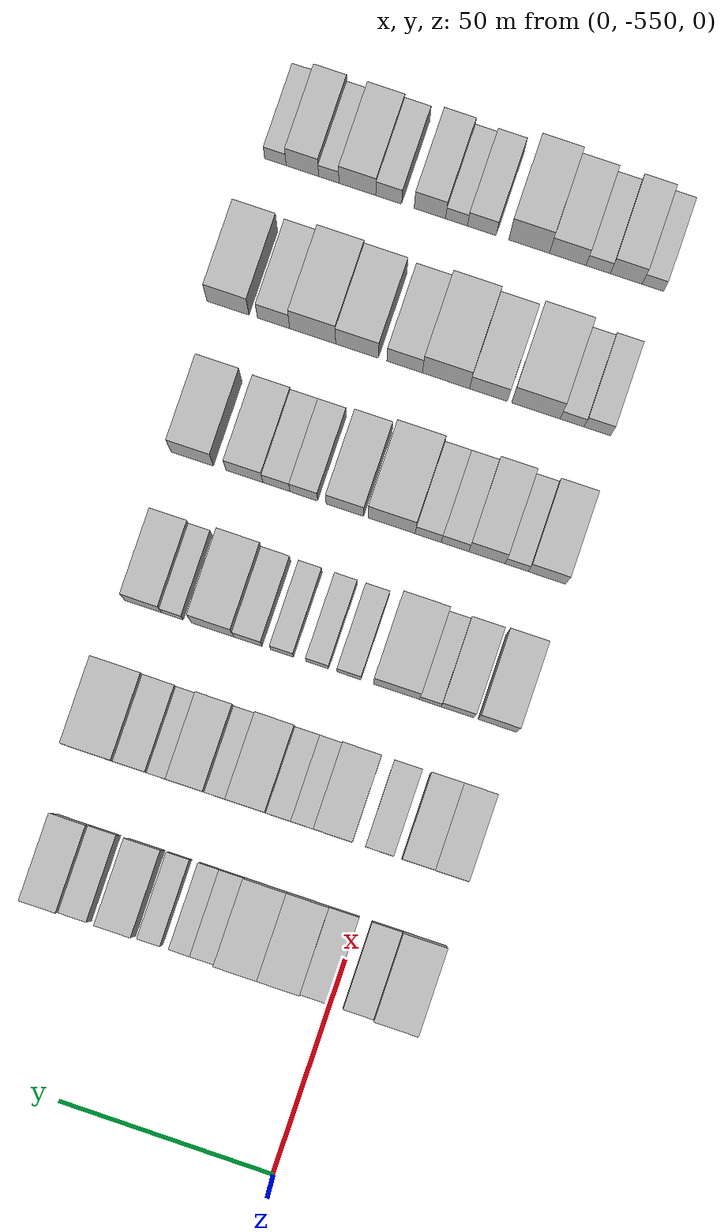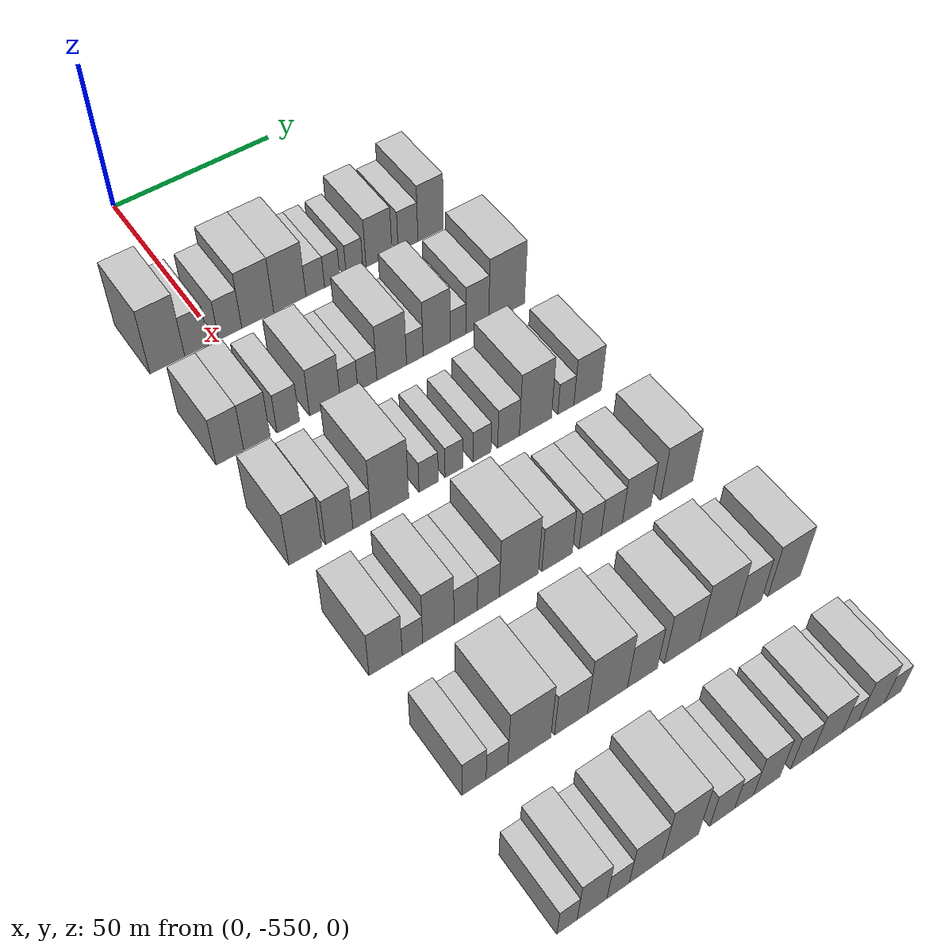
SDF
<sdf version="1.6">
 <world name="default">
  <model name="building_1">
   <static>1</static>
   <pose>50.0000 -564.9371 0 0.000000 0.000000 0.000000</pose>
   <link name="link">
    <pose>0 0 12.00 0 0 0</pose>
    <collision name="collision"><geometry><box><size>20.0000 10.1258 24.0000</size></box></geometry></collision>
    <visual name="visual">
     <cast_shadows>0</cast_shadows>
     <geometry><box><size>20.0000 10.1258 24.0000</size></box></geometry>
     <material>
      <script>
       <uri>model://HANNAS_wall/materials/scripts</uri>
       <uri>model://HANNAS_wall/materials/textures</uri>
       <name>vrc/HANNAS_wall</name>
      </script>
     </material>
    </visual>
   </link>
  </model>
  <model name="building_2">
   <static>1</static>
   <pose>50.0000 -556.3736 0 0.000000 0.000000 0.000000</pose>
   <link name="link">
    <pose>0 0 7.50 0 0 0</pose>
    <collision name="collision"><geometry><box><size>20.0000 7.0012 15.0000</size></box></geometry></collision>
    <visual name="visual">
     <cast_shadows>0</cast_shadows>
     <geometry><box><size>20.0000 7.0012 15.0000</size></box></geometry>
     <material>
      <script>
       <uri>model://HANNAS_wall/materials/scripts</uri>
       <uri>model://HANNAS_wall/materials/textures</uri>
       <name>vrc/HANNAS_wall</name>
      </script>
     </material>
    </visual>
   </link>
  </model>
  <model name="building_3">
   <static>1</static>
   <pose>50.0000 -546.3919 0 0.000000 0.000000 0.000000</pose>
   <link name="link">
    <pose>0 0 7.50 0 0 0</pose>
    <collision name="collision"><geometry><box><size>20.0000 6.9620 15.0000</size></box></geometry></collision>
    <visual name="visual">
     <cast_shadows>0</cast_shadows>
     <geometry><box><size>20.0000 6.9620 15.0000</size></box></geometry>
     <material>
      <script>
       <uri>model://HANNAS_wall/materials/scripts</uri>
       <uri>model://HANNAS_wall/materials/textures</uri>
       <name>vrc/HANNAS_wall</name>
      </script>
     </material>
    </visual>
   </link>
  </model>
  <model name="building_4">
   <static>1</static>
   <pose>50.0000 -538.0496 0 0.000000 0.000000 0.000000</pose>
   <link name="link">
    <pose>0 0 10.50 0 0 0</pose>
    <collision name="collision"><geometry><box><size>20.0000 9.7227 21.0000</size></box></geometry></collision>
    <visual name="visual">
     <cast_shadows>0</cast_shadows>
     <geometry><box><size>20.0000 9.7227 21.0000</size></box></geometry>
     <material>
      <script>
       <uri>model://HANNAS_wall/materials/scripts</uri>
       <uri>model://HANNAS_wall/materials/textures</uri>
       <name>vrc/HANNAS_wall</name>
      </script>
     </material>
    </visual>
   </link>
  </model>
  <model name="building_5">
   <static>1</static>
   <pose>50.0000 -528.2253 0 0.000000 0.000000 0.000000</pose>
   <link name="link">
    <pose>0 0 10.50 0 0 0</pose>
    <collision name="collision"><geometry><box><size>20.0000 9.9258 21.0000</size></box></geometry></collision>
    <visual name="visual">
     <cast_shadows>0</cast_shadows>
     <geometry><box><size>20.0000 9.9258 21.0000</size></box></geometry>
     <material>
      <script>
       <uri>model://HANNAS_wall/materials/scripts</uri>
       <uri>model://HANNAS_wall/materials/textures</uri>
       <name>vrc/HANNAS_wall</name>
      </script>
     </material>
    </visual>
   </link>
  </model>
  <model name="building_6">
   <static>1</static>
   <pose>50.0000 -520.3430 0 0.000000 0.000000 0.000000</pose>
   <link name="link">
    <pose>0 0 6.00 0 0 0</pose>
    <collision name="collision"><geometry><box><size>20.0000 5.8388 12.0000</size></box></geometry></collision>
    <visual name="visual">
     <cast_shadows>0</cast_shadows>
     <geometry><box><size>20.0000 5.8388 12.0000</size></box></geometry>
     <material>
      <script>
       <uri>model://HANNAS_wall/materials/scripts</uri>
       <uri>model://HANNAS_wall/materials/textures</uri>
       <name>vrc/HANNAS_wall</name>
      </script>
     </material>
    </visual>
   </link>
  </model>
  <model name="building_7">
   <static>1</static>
   <pose>50.0000 -514.9900 0 0.000000 0.000000 0.000000</pose>
   <link name="link">
    <pose>0 0 6.00 0 0 0</pose>
    <collision name="collision"><geometry><box><size>20.0000 4.8670 12.0000</size></box></geometry></collision>
    <visual name="visual">
     <cast_shadows>0</cast_shadows>
     <geometry><box><size>20.0000 4.8670 12.0000</size></box></geometry>
     <material>
      <script>
       <uri>model://HANNAS_wall/materials/scripts</uri>
       <uri>model://HANNAS_wall/materials/textures</uri>
       <name>vrc/HANNAS_wall</name>
      </script>
     </material>
    </visual>
   </link>
  </model>
  <model name="building_8">
   <static>1</static>
   <pose>50.0000 -507.8897 0 0.000000 0.000000 0.000000</pose>
   <link name="link">
    <pose>0 0 6.00 0 0 0</pose>
    <collision name="collision"><geometry><box><size>20.0000 5.3337 12.0000</size></box></geometry></collision>
    <visual name="visual">
     <cast_shadows>0</cast_shadows>
     <geometry><box><size>20.0000 5.3337 12.0000</size></box></geometry>
     <material>
      <script>
       <uri>model://HANNAS_wall/materials/scripts</uri>
       <uri>model://HANNAS_wall/materials/textures</uri>
       <name>vrc/HANNAS_wall</name>
      </script>
     </material>
    </visual>
   </link>
  </model>
  <model name="building_9">
   <static>1</static>
   <pose>50.0000 -500.0174 0 0.000000 0.000000 0.000000</pose>
   <link name="link">
    <pose>0 0 9.00 0 0 0</pose>
    <collision name="collision"><geometry><box><size>20.0000 8.4110 18.0000</size></box></geometry></collision>
    <visual name="visual">
     <cast_shadows>0</cast_shadows>
     <geometry><box><size>20.0000 8.4110 18.0000</size></box></geometry>
     <material>
      <script>
       <uri>model://HANNAS_wall/materials/scripts</uri>
       <uri>model://HANNAS_wall/materials/textures</uri>
       <name>vrc/HANNAS_wall</name>
      </script>
     </material>
    </visual>
   </link>
  </model>
  <model name="building_10">
   <static>1</static>
   <pose>50.0000 -490.5648 0 0.000000 0.000000 0.000000</pose>
   <link name="link">
    <pose>0 0 7.50 0 0 0</pose>
    <collision name="collision"><geometry><box><size>20.0000 6.4942 15.0000</size></box></geometry></collision>
    <visual name="visual">
     <cast_shadows>0</cast_shadows>
     <geometry><box><size>20.0000 6.4942 15.0000</size></box></geometry>
     <material>
      <script>
       <uri>model://HANNAS_wall/materials/scripts</uri>
       <uri>model://HANNAS_wall/materials/textures</uri>
       <name>vrc/HANNAS_wall</name>
      </script>
     </material>
    </visual>
   </link>
  </model>
  <model name="building_11">
   <static>1</static>
   <pose>50.0000 -483.0995 0 0.000000 0.000000 0.000000</pose>
   <link name="link">
    <pose>0 0 10.50 0 0 0</pose>
    <collision name="collision"><geometry><box><size>20.0000 8.4364 21.0000</size></box></geometry></collision>
    <visual name="visual">
     <cast_shadows>0</cast_shadows>
     <geometry><box><size>20.0000 8.4364 21.0000</size></box></geometry>
     <material>
      <script>
       <uri>model://HANNAS_wall/materials/scripts</uri>
       <uri>model://HANNAS_wall/materials/textures</uri>
       <name>vrc/HANNAS_wall</name>
      </script>
     </material>
    </visual>
   </link>
  </model>
  <model name="building_128">
   <static>1</static>
   <pose>85.0000 -566.1047 0 0.000000 0.000000 0.000000</pose>
   <link name="link">
    <pose>0 0 9.00 0 0 0</pose>
    <collision name="collision"><geometry><box><size>20.0000 7.7905 18.0000</size></box></geometry></collision>
    <visual name="visual">
     <cast_shadows>0</cast_shadows>
     <geometry><box><size>20.0000 7.7905 18.0000</size></box></geometry>
     <material>
      <script>
       <uri>model://HANNAS_wall/materials/scripts</uri>
       <uri>model://HANNAS_wall/materials/textures</uri>
       <name>vrc/HANNAS_wall</name>
      </script>
     </material>
    </visual>
   </link>
  </model>
  <model name="building_129">
   <static>1</static>
   <pose>85.0000 -558.4535 0 0.000000 0.000000 0.000000</pose>
   <link name="link">
    <pose>0 0 9.00 0 0 0</pose>
    <collision name="collision"><geometry><box><size>20.0000 7.5120 18.0000</size></box></geometry></collision>
    <visual name="visual">
     <cast_shadows>0</cast_shadows>
     <geometry><box><size>20.0000 7.5120 18.0000</size></box></geometry>
     <material>
      <script>
       <uri>model://HANNAS_wall/materials/scripts</uri>
       <uri>model://HANNAS_wall/materials/textures</uri>
       <name>vrc/HANNAS_wall</name>
      </script>
     </material>
    </visual>
   </link>
  </model>
  <model name="building_130">
   <static>1</static>
   <pose>85.0000 -549.4455 0 0.000000 0.000000 0.000000</pose>
   <link name="link">
    <pose>0 0 7.50 0 0 0</pose>
    <collision name="collision"><geometry><box><size>20.0000 6.5040 15.0000</size></box></geometry></collision>
    <visual name="visual">
     <cast_shadows>0</cast_shadows>
     <geometry><box><size>20.0000 6.5040 15.0000</size></box></geometry>
     <material>
      <script>
       <uri>model://HANNAS_wall/materials/scripts</uri>
       <uri>model://HANNAS_wall/materials/textures</uri>
       <name>vrc/HANNAS_wall</name>
      </script>
     </material>
    </visual>
   </link>
  </model>
  <model name="building_131">
   <static>1</static>
   <pose>85.0000 -538.6971 0 0.000000 0.000000 0.000000</pose>
   <link name="link">
    <pose>0 0 9.00 0 0 0</pose>
    <collision name="collision"><geometry><box><size>20.0000 8.9928 18.0000</size></box></geometry></collision>
    <visual name="visual">
     <cast_shadows>0</cast_shadows>
     <geometry><box><size>20.0000 8.9928 18.0000</size></box></geometry>
     <material>
      <script>
       <uri>model://HANNAS_wall/materials/scripts</uri>
       <uri>model://HANNAS_wall/materials/textures</uri>
       <name>vrc/HANNAS_wall</name>
      </script>
     </material>
    </visual>
   </link>
  </model>
  <model name="building_132">
   <static>1</static>
   <pose>85.0000 -531.5405 0 0.000000 0.000000 0.000000</pose>
   <link name="link">
    <pose>0 0 6.00 0 0 0</pose>
    <collision name="collision"><geometry><box><size>20.0000 5.3203 12.0000</size></box></geometry></collision>
    <visual name="visual">
     <cast_shadows>0</cast_shadows>
     <geometry><box><size>20.0000 5.3203 12.0000</size></box></geometry>
     <material>
      <script>
       <uri>model://HANNAS_wall/materials/scripts</uri>
       <uri>model://HANNAS_wall/materials/textures</uri>
       <name>vrc/HANNAS_wall</name>
      </script>
     </material>
    </visual>
   </link>
  </model>
  <model name="building_133">
   <static>1</static>
   <pose>85.0000 -526.0004 0 0.000000 0.000000 0.000000</pose>
   <link name="link">
    <pose>0 0 6.00 0 0 0</pose>
    <collision name="collision"><geometry><box><size>20.0000 5.7601 12.0000</size></box></geometry></collision>
    <visual name="visual">
     <cast_shadows>0</cast_shadows>
     <geometry><box><size>20.0000 5.7601 12.0000</size></box></geometry>
     <material>
      <script>
       <uri>model://HANNAS_wall/materials/scripts</uri>
       <uri>model://HANNAS_wall/materials/textures</uri>
       <name>vrc/HANNAS_wall</name>
      </script>
     </material>
    </visual>
   </link>
  </model>
  <model name="building_134">
   <static>1</static>
   <pose>85.0000 -518.5793 0 0.000000 0.000000 0.000000</pose>
   <link name="link">
    <pose>0 0 10.50 0 0 0</pose>
    <collision name="collision"><geometry><box><size>20.0000 9.0820 21.0000</size></box></geometry></collision>
    <visual name="visual">
     <cast_shadows>0</cast_shadows>
     <geometry><box><size>20.0000 9.0820 21.0000</size></box></geometry>
     <material>
      <script>
       <uri>model://HANNAS_wall/materials/scripts</uri>
       <uri>model://HANNAS_wall/materials/textures</uri>
       <name>vrc/HANNAS_wall</name>
      </script>
     </material>
    </visual>
   </link>
  </model>
  <model name="building_135">
   <static>1</static>
   <pose>85.0000 -511.4647 0 0.000000 0.000000 0.000000</pose>
   <link name="link">
    <pose>0 0 6.00 0 0 0</pose>
    <collision name="collision"><geometry><box><size>20.0000 5.1472 12.0000</size></box></geometry></collision>
    <visual name="visual">
     <cast_shadows>0</cast_shadows>
     <geometry><box><size>20.0000 5.1472 12.0000</size></box></geometry>
     <material>
      <script>
       <uri>model://HANNAS_wall/materials/scripts</uri>
       <uri>model://HANNAS_wall/materials/textures</uri>
       <name>vrc/HANNAS_wall</name>
      </script>
     </material>
    </visual>
   </link>
  </model>
  <model name="building_136">
   <static>1</static>
   <pose>85.0000 -504.6475 0 0.000000 0.000000 0.000000</pose>
   <link name="link">
    <pose>0 0 10.50 0 0 0</pose>
    <collision name="collision"><geometry><box><size>20.0000 8.4872 21.0000</size></box></geometry></collision>
    <visual name="visual">
     <cast_shadows>0</cast_shadows>
     <geometry><box><size>20.0000 8.4872 21.0000</size></box></geometry>
     <material>
      <script>
       <uri>model://HANNAS_wall/materials/scripts</uri>
       <uri>model://HANNAS_wall/materials/textures</uri>
       <name>vrc/HANNAS_wall</name>
      </script>
     </material>
    </visual>
   </link>
  </model>
  <model name="building_137">
   <static>1</static>
   <pose>85.0000 -497.9480 0 0.000000 0.000000 0.000000</pose>
   <link name="link">
    <pose>0 0 6.00 0 0 0</pose>
    <collision name="collision"><geometry><box><size>20.0000 4.9119 12.0000</size></box></geometry></collision>
    <visual name="visual">
     <cast_shadows>0</cast_shadows>
     <geometry><box><size>20.0000 4.9119 12.0000</size></box></geometry>
     <material>
      <script>
       <uri>model://HANNAS_wall/materials/scripts</uri>
       <uri>model://HANNAS_wall/materials/textures</uri>
       <name>vrc/HANNAS_wall</name>
      </script>
     </material>
    </visual>
   </link>
  </model>
  <model name="building_138">
   <static>1</static>
   <pose>85.0000 -491.8033 0 0.000000 0.000000 0.000000</pose>
   <link name="link">
    <pose>0 0 9.00 0 0 0</pose>
    <collision name="collision"><geometry><box><size>20.0000 7.3774 18.0000</size></box></geometry></collision>
    <visual name="visual">
     <cast_shadows>0</cast_shadows>
     <geometry><box><size>20.0000 7.3774 18.0000</size></box></geometry>
     <material>
      <script>
       <uri>model://HANNAS_wall/materials/scripts</uri>
       <uri>model://HANNAS_wall/materials/textures</uri>
       <name>vrc/HANNAS_wall</name>
      </script>
     </material>
    </visual>
   </link>
  </model>
  <model name="building_139">
   <static>1</static>
   <pose>85.0000 -482.2939 0 0.000000 0.000000 0.000000</pose>
   <link name="link">
    <pose>0 0 12.00 0 0 0</pose>
    <collision name="collision"><geometry><box><size>20.0000 11.6415 24.0000</size></box></geometry></collision>
    <visual name="visual">
     <cast_shadows>0</cast_shadows>
     <geometry><box><size>20.0000 11.6415 24.0000</size></box></geometry>
     <material>
      <script>
       <uri>model://HANNAS_wall/materials/scripts</uri>
       <uri>model://HANNAS_wall/materials/textures</uri>
       <name>vrc/HANNAS_wall</name>
      </script>
     </material>
    </visual>
   </link>
  </model>
  <model name="building_253">
   <static>1</static>
   <pose>120.0000 -565.4733 0 0.000000 0.000000 0.000000</pose>
   <link name="link">
    <pose>0 0 10.50 0 0 0</pose>
    <collision name="collision"><geometry><box><size>20.0000 9.0533 21.0000</size></box></geometry></collision>
    <visual name="visual">
     <cast_shadows>0</cast_shadows>
     <geometry><box><size>20.0000 9.0533 21.0000</size></box></geometry>
     <material>
      <script>
       <uri>model://HANNAS_wall/materials/scripts</uri>
       <uri>model://HANNAS_wall/materials/textures</uri>
       <name>vrc/HANNAS_wall</name>
      </script>
     </material>
    </visual>
   </link>
  </model>
  <model name="building_254">
   <static>1</static>
   <pose>120.0000 -556.1009 0 0.000000 0.000000 0.000000</pose>
   <link name="link">
    <pose>0 0 9.00 0 0 0</pose>
    <collision name="collision"><geometry><box><size>20.0000 7.6916 18.0000</size></box></geometry></collision>
    <visual name="visual">
     <cast_shadows>0</cast_shadows>
     <geometry><box><size>20.0000 7.6916 18.0000</size></box></geometry>
     <material>
      <script>
       <uri>model://HANNAS_wall/materials/scripts</uri>
       <uri>model://HANNAS_wall/materials/textures</uri>
       <name>vrc/HANNAS_wall</name>
      </script>
     </material>
    </visual>
   </link>
  </model>
  <model name="building_255">
   <static>1</static>
   <pose>120.0000 -549.7220 0 0.000000 0.000000 0.000000</pose>
   <link name="link">
    <pose>0 0 6.00 0 0 0</pose>
    <collision name="collision"><geometry><box><size>20.0000 5.0662 12.0000</size></box></geometry></collision>
    <visual name="visual">
     <cast_shadows>0</cast_shadows>
     <geometry><box><size>20.0000 5.0662 12.0000</size></box></geometry>
     <material>
      <script>
       <uri>model://HANNAS_wall/materials/scripts</uri>
       <uri>model://HANNAS_wall/materials/textures</uri>
       <name>vrc/HANNAS_wall</name>
      </script>
     </material>
    </visual>
   </link>
  </model>
  <model name="building_256">
   <static>1</static>
   <pose>120.0000 -541.7917 0 0.000000 0.000000 0.000000</pose>
   <link name="link">
    <pose>0 0 12.00 0 0 0</pose>
    <collision name="collision"><geometry><box><size>20.0000 10.7942 24.0000</size></box></geometry></collision>
    <visual name="visual">
     <cast_shadows>0</cast_shadows>
     <geometry><box><size>20.0000 10.7942 24.0000</size></box></geometry>
     <material>
      <script>
       <uri>model://HANNAS_wall/materials/scripts</uri>
       <uri>model://HANNAS_wall/materials/textures</uri>
       <name>vrc/HANNAS_wall</name>
      </script>
     </material>
    </visual>
   </link>
  </model>
  <model name="building_257">
   <static>1</static>
   <pose>120.0000 -530.5836 0 0.000000 0.000000 0.000000</pose>
   <link name="link">
    <pose>0 0 6.00 0 0 0</pose>
    <collision name="collision"><geometry><box><size>20.0000 5.6221 12.0000</size></box></geometry></collision>
    <visual name="visual">
     <cast_shadows>0</cast_shadows>
     <geometry><box><size>20.0000 5.6221 12.0000</size></box></geometry>
     <material>
      <script>
       <uri>model://HANNAS_wall/materials/scripts</uri>
       <uri>model://HANNAS_wall/materials/textures</uri>
       <name>vrc/HANNAS_wall</name>
      </script>
     </material>
    </visual>
   </link>
  </model>
  <model name="building_258">
   <static>1</static>
   <pose>120.0000 -523.1265 0 0.000000 0.000000 0.000000</pose>
   <link name="link">
    <pose>0 0 6.00 0 0 0</pose>
    <collision name="collision"><geometry><box><size>20.0000 5.2922 12.0000</size></box></geometry></collision>
    <visual name="visual">
     <cast_shadows>0</cast_shadows>
     <geometry><box><size>20.0000 5.2922 12.0000</size></box></geometry>
     <material>
      <script>
       <uri>model://HANNAS_wall/materials/scripts</uri>
       <uri>model://HANNAS_wall/materials/textures</uri>
       <name>vrc/HANNAS_wall</name>
      </script>
     </material>
    </visual>
   </link>
  </model>
  <model name="building_259">
   <static>1</static>
   <pose>120.0000 -514.7713 0 0.000000 0.000000 0.000000</pose>
   <link name="link">
    <pose>0 0 6.00 0 0 0</pose>
    <collision name="collision"><geometry><box><size>20.0000 5.4182 12.0000</size></box></geometry></collision>
    <visual name="visual">
     <cast_shadows>0</cast_shadows>
     <geometry><box><size>20.0000 5.4182 12.0000</size></box></geometry>
     <material>
      <script>
       <uri>model://HANNAS_wall/materials/scripts</uri>
       <uri>model://HANNAS_wall/materials/textures</uri>
       <name>vrc/HANNAS_wall</name>
      </script>
     </material>
    </visual>
   </link>
  </model>
  <model name="building_260">
   <static>1</static>
   <pose>120.0000 -506.7471 0 0.000000 0.000000 0.000000</pose>
   <link name="link">
    <pose>0 0 7.50 0 0 0</pose>
    <collision name="collision"><geometry><box><size>20.0000 6.6301 15.0000</size></box></geometry></collision>
    <visual name="visual">
     <cast_shadows>0</cast_shadows>
     <geometry><box><size>20.0000 6.6301 15.0000</size></box></geometry>
     <material>
      <script>
       <uri>model://HANNAS_wall/materials/scripts</uri>
       <uri>model://HANNAS_wall/materials/textures</uri>
       <name>vrc/HANNAS_wall</name>
      </script>
     </material>
    </visual>
   </link>
  </model>
  <model name="building_261">
   <static>1</static>
   <pose>120.0000 -498.4509 0 0.000000 0.000000 0.000000</pose>
   <link name="link">
    <pose>0 0 12.00 0 0 0</pose>
    <collision name="collision"><geometry><box><size>20.0000 9.9622 24.0000</size></box></geometry></collision>
    <visual name="visual">
     <cast_shadows>0</cast_shadows>
     <geometry><box><size>20.0000 9.9622 24.0000</size></box></geometry>
     <material>
      <script>
       <uri>model://HANNAS_wall/materials/scripts</uri>
       <uri>model://HANNAS_wall/materials/textures</uri>
       <name>vrc/HANNAS_wall</name>
      </script>
     </material>
    </visual>
   </link>
  </model>
  <model name="building_262">
   <static>1</static>
   <pose>120.0000 -488.9418 0 0.000000 0.000000 0.000000</pose>
   <link name="link">
    <pose>0 0 6.00 0 0 0</pose>
    <collision name="collision"><geometry><box><size>20.0000 5.0562 12.0000</size></box></geometry></collision>
    <visual name="visual">
     <cast_shadows>0</cast_shadows>
     <geometry><box><size>20.0000 5.0562 12.0000</size></box></geometry>
     <material>
      <script>
       <uri>model://HANNAS_wall/materials/scripts</uri>
       <uri>model://HANNAS_wall/materials/textures</uri>
       <name>vrc/HANNAS_wall</name>
      </script>
     </material>
    </visual>
   </link>
  </model>
  <model name="building_263">
   <static>1</static>
   <pose>120.0000 -482.0504 0 0.000000 0.000000 0.000000</pose>
   <link name="link">
    <pose>0 0 9.00 0 0 0</pose>
    <collision name="collision"><geometry><box><size>20.0000 8.7266 18.0000</size></box></geometry></collision>
    <visual name="visual">
     <cast_shadows>0</cast_shadows>
     <geometry><box><size>20.0000 8.7266 18.0000</size></box></geometry>
     <material>
      <script>
       <uri>model://HANNAS_wall/materials/scripts</uri>
       <uri>model://HANNAS_wall/materials/textures</uri>
       <name>vrc/HANNAS_wall</name>
      </script>
     </material>
    </visual>
   </link>
  </model>
  <model name="building_380">
   <static>1</static>
   <pose>155.0000 -565.5691 0 0.000000 0.000000 0.000000</pose>
   <link name="link">
    <pose>0 0 9.00 0 0 0</pose>
    <collision name="collision"><geometry><box><size>20.0000 8.8619 18.0000</size></box></geometry></collision>
    <visual name="visual">
     <cast_shadows>0</cast_shadows>
     <geometry><box><size>20.0000 8.8619 18.0000</size></box></geometry>
     <material>
      <script>
       <uri>model://HANNAS_wall/materials/scripts</uri>
       <uri>model://HANNAS_wall/materials/textures</uri>
       <name>vrc/HANNAS_wall</name>
      </script>
     </material>
    </visual>
   </link>
  </model>
  <model name="building_381">
   <static>1</static>
   <pose>155.0000 -558.3789 0 0.000000 0.000000 0.000000</pose>
   <link name="link">
    <pose>0 0 6.00 0 0 0</pose>
    <collision name="collision"><geometry><box><size>20.0000 5.5184 12.0000</size></box></geometry></collision>
    <visual name="visual">
     <cast_shadows>0</cast_shadows>
     <geometry><box><size>20.0000 5.5184 12.0000</size></box></geometry>
     <material>
      <script>
       <uri>model://HANNAS_wall/materials/scripts</uri>
       <uri>model://HANNAS_wall/materials/textures</uri>
       <name>vrc/HANNAS_wall</name>
      </script>
     </material>
    </visual>
   </link>
  </model>
  <model name="building_382">
   <static>1</static>
   <pose>155.0000 -551.3504 0 0.000000 0.000000 0.000000</pose>
   <link name="link">
    <pose>0 0 10.50 0 0 0</pose>
    <collision name="collision"><geometry><box><size>20.0000 8.5385 21.0000</size></box></geometry></collision>
    <visual name="visual">
     <cast_shadows>0</cast_shadows>
     <geometry><box><size>20.0000 8.5385 21.0000</size></box></geometry>
     <material>
      <script>
       <uri>model://HANNAS_wall/materials/scripts</uri>
       <uri>model://HANNAS_wall/materials/textures</uri>
       <name>vrc/HANNAS_wall</name>
      </script>
     </material>
    </visual>
   </link>
  </model>
  <model name="building_383">
   <static>1</static>
   <pose>155.0000 -543.8409 0 0.000000 0.000000 0.000000</pose>
   <link name="link">
    <pose>0 0 7.50 0 0 0</pose>
    <collision name="collision"><geometry><box><size>20.0000 6.4807 15.0000</size></box></geometry></collision>
    <visual name="visual">
     <cast_shadows>0</cast_shadows>
     <geometry><box><size>20.0000 6.4807 15.0000</size></box></geometry>
     <material>
      <script>
       <uri>model://HANNAS_wall/materials/scripts</uri>
       <uri>model://HANNAS_wall/materials/textures</uri>
       <name>vrc/HANNAS_wall</name>
      </script>
     </material>
    </visual>
   </link>
  </model>
  <model name="building_384">
   <static>1</static>
   <pose>155.0000 -537.5071 0 0.000000 0.000000 0.000000</pose>
   <link name="link">
    <pose>0 0 7.50 0 0 0</pose>
    <collision name="collision"><geometry><box><size>20.0000 6.1869 15.0000</size></box></geometry></collision>
    <visual name="visual">
     <cast_shadows>0</cast_shadows>
     <geometry><box><size>20.0000 6.1869 15.0000</size></box></geometry>
     <material>
      <script>
       <uri>model://HANNAS_wall/materials/scripts</uri>
       <uri>model://HANNAS_wall/materials/textures</uri>
       <name>vrc/HANNAS_wall</name>
      </script>
     </material>
    </visual>
   </link>
  </model>
  <model name="building_385">
   <static>1</static>
   <pose>155.0000 -528.8248 0 0.000000 0.000000 0.000000</pose>
   <link name="link">
    <pose>0 0 12.00 0 0 0</pose>
    <collision name="collision"><geometry><box><size>20.0000 11.1777 24.0000</size></box></geometry></collision>
    <visual name="visual">
     <cast_shadows>0</cast_shadows>
     <geometry><box><size>20.0000 11.1777 24.0000</size></box></geometry>
     <material>
      <script>
       <uri>model://HANNAS_wall/materials/scripts</uri>
       <uri>model://HANNAS_wall/materials/textures</uri>
       <name>vrc/HANNAS_wall</name>
      </script>
     </material>
    </visual>
   </link>
  </model>
  <model name="building_386">
   <static>1</static>
   <pose>155.0000 -517.7871 0 0.000000 0.000000 0.000000</pose>
   <link name="link">
    <pose>0 0 9.00 0 0 0</pose>
    <collision name="collision"><geometry><box><size>20.0000 8.8977 18.0000</size></box></geometry></collision>
    <visual name="visual">
     <cast_shadows>0</cast_shadows>
     <geometry><box><size>20.0000 8.8977 18.0000</size></box></geometry>
     <material>
      <script>
       <uri>model://HANNAS_wall/materials/scripts</uri>
       <uri>model://HANNAS_wall/materials/textures</uri>
       <name>vrc/HANNAS_wall</name>
      </script>
     </material>
    </visual>
   </link>
  </model>
  <model name="building_387">
   <static>1</static>
   <pose>155.0000 -508.0558 0 0.000000 0.000000 0.000000</pose>
   <link name="link">
    <pose>0 0 7.50 0 0 0</pose>
    <collision name="collision"><geometry><box><size>20.0000 6.5650 15.0000</size></box></geometry></collision>
    <visual name="visual">
     <cast_shadows>0</cast_shadows>
     <geometry><box><size>20.0000 6.5650 15.0000</size></box></geometry>
     <material>
      <script>
       <uri>model://HANNAS_wall/materials/scripts</uri>
       <uri>model://HANNAS_wall/materials/textures</uri>
       <name>vrc/HANNAS_wall</name>
      </script>
     </material>
    </visual>
   </link>
  </model>
  <model name="building_388">
   <static>1</static>
   <pose>155.0000 -501.5712 0 0.000000 0.000000 0.000000</pose>
   <link name="link">
    <pose>0 0 7.50 0 0 0</pose>
    <collision name="collision"><geometry><box><size>20.0000 6.4041 15.0000</size></box></geometry></collision>
    <visual name="visual">
     <cast_shadows>0</cast_shadows>
     <geometry><box><size>20.0000 6.4041 15.0000</size></box></geometry>
     <material>
      <script>
       <uri>model://HANNAS_wall/materials/scripts</uri>
       <uri>model://HANNAS_wall/materials/textures</uri>
       <name>vrc/HANNAS_wall</name>
      </script>
     </material>
    </visual>
   </link>
  </model>
  <model name="building_389">
   <static>1</static>
   <pose>155.0000 -493.9991 0 0.000000 0.000000 0.000000</pose>
   <link name="link">
    <pose>0 0 9.00 0 0 0</pose>
    <collision name="collision"><geometry><box><size>20.0000 8.7402 18.0000</size></box></geometry></collision>
    <visual name="visual">
     <cast_shadows>0</cast_shadows>
     <geometry><box><size>20.0000 8.7402 18.0000</size></box></geometry>
     <material>
      <script>
       <uri>model://HANNAS_wall/materials/scripts</uri>
       <uri>model://HANNAS_wall/materials/textures</uri>
       <name>vrc/HANNAS_wall</name>
      </script>
     </material>
    </visual>
   </link>
  </model>
  <model name="building_390">
   <static>1</static>
   <pose>155.0000 -481.6002 0 0.000000 0.000000 0.000000</pose>
   <link name="link">
    <pose>0 0 10.50 0 0 0</pose>
    <collision name="collision"><geometry><box><size>20.0000 10.0576 21.0000</size></box></geometry></collision>
    <visual name="visual">
     <cast_shadows>0</cast_shadows>
     <geometry><box><size>20.0000 10.0576 21.0000</size></box></geometry>
     <material>
      <script>
       <uri>model://HANNAS_wall/materials/scripts</uri>
       <uri>model://HANNAS_wall/materials/textures</uri>
       <name>vrc/HANNAS_wall</name>
      </script>
     </material>
    </visual>
   </link>
  </model>
  <model name="building_507">
   <static>1</static>
   <pose>190.0000 -565.8577 0 0.000000 0.000000 0.000000</pose>
   <link name="link">
    <pose>0 0 7.50 0 0 0</pose>
    <collision name="collision"><geometry><box><size>20.0000 6.2846 15.0000</size></box></geometry></collision>
    <visual name="visual">
     <cast_shadows>0</cast_shadows>
     <geometry><box><size>20.0000 6.2846 15.0000</size></box></geometry>
     <material>
      <script>
       <uri>model://HANNAS_wall/materials/scripts</uri>
       <uri>model://HANNAS_wall/materials/textures</uri>
       <name>vrc/HANNAS_wall</name>
      </script>
     </material>
    </visual>
   </link>
  </model>
  <model name="building_508">
   <static>1</static>
   <pose>190.0000 -559.8732 0 0.000000 0.000000 0.000000</pose>
   <link name="link">
    <pose>0 0 6.00 0 0 0</pose>
    <collision name="collision"><geometry><box><size>20.0000 5.6844 12.0000</size></box></geometry></collision>
    <visual name="visual">
     <cast_shadows>0</cast_shadows>
     <geometry><box><size>20.0000 5.6844 12.0000</size></box></geometry>
     <material>
      <script>
       <uri>model://HANNAS_wall/materials/scripts</uri>
       <uri>model://HANNAS_wall/materials/textures</uri>
       <name>vrc/HANNAS_wall</name>
      </script>
     </material>
    </visual>
   </link>
  </model>
  <model name="building_509">
   <static>1</static>
   <pose>190.0000 -551.2915 0 0.000000 0.000000 0.000000</pose>
   <link name="link">
    <pose>0 0 12.00 0 0 0</pose>
    <collision name="collision"><geometry><box><size>20.0000 11.4791 24.0000</size></box></geometry></collision>
    <visual name="visual">
     <cast_shadows>0</cast_shadows>
     <geometry><box><size>20.0000 11.4791 24.0000</size></box></geometry>
     <material>
      <script>
       <uri>model://HANNAS_wall/materials/scripts</uri>
       <uri>model://HANNAS_wall/materials/textures</uri>
       <name>vrc/HANNAS_wall</name>
      </script>
     </material>
    </visual>
   </link>
  </model>
  <model name="building_510">
   <static>1</static>
   <pose>190.0000 -540.0602 0 0.000000 0.000000 0.000000</pose>
   <link name="link">
    <pose>0 0 9.00 0 0 0</pose>
    <collision name="collision"><geometry><box><size>20.0000 8.9835 18.0000</size></box></geometry></collision>
    <visual name="visual">
     <cast_shadows>0</cast_shadows>
     <geometry><box><size>20.0000 8.9835 18.0000</size></box></geometry>
     <material>
      <script>
       <uri>model://HANNAS_wall/materials/scripts</uri>
       <uri>model://HANNAS_wall/materials/textures</uri>
       <name>vrc/HANNAS_wall</name>
      </script>
     </material>
    </visual>
   </link>
  </model>
  <model name="building_511">
   <static>1</static>
   <pose>190.0000 -529.9746 0 0.000000 0.000000 0.000000</pose>
   <link name="link">
    <pose>0 0 12.00 0 0 0</pose>
    <collision name="collision"><geometry><box><size>20.0000 11.1876 24.0000</size></box></geometry></collision>
    <visual name="visual">
     <cast_shadows>0</cast_shadows>
     <geometry><box><size>20.0000 11.1876 24.0000</size></box></geometry>
     <material>
      <script>
       <uri>model://HANNAS_wall/materials/scripts</uri>
       <uri>model://HANNAS_wall/materials/textures</uri>
       <name>vrc/HANNAS_wall</name>
      </script>
     </material>
    </visual>
   </link>
  </model>
  <model name="building_512">
   <static>1</static>
   <pose>190.0000 -520.1507 0 0.000000 0.000000 0.000000</pose>
   <link name="link">
    <pose>0 0 9.00 0 0 0</pose>
    <collision name="collision"><geometry><box><size>20.0000 8.4604 18.0000</size></box></geometry></collision>
    <visual name="visual">
     <cast_shadows>0</cast_shadows>
     <geometry><box><size>20.0000 8.4604 18.0000</size></box></geometry>
     <material>
      <script>
       <uri>model://HANNAS_wall/materials/scripts</uri>
       <uri>model://HANNAS_wall/materials/textures</uri>
       <name>vrc/HANNAS_wall</name>
      </script>
     </material>
    </visual>
   </link>
  </model>
  <model name="building_513">
   <static>1</static>
   <pose>190.0000 -508.8477 0 0.000000 0.000000 0.000000</pose>
   <link name="link">
    <pose>0 0 10.50 0 0 0</pose>
    <collision name="collision"><geometry><box><size>20.0000 10.1456 21.0000</size></box></geometry></collision>
    <visual name="visual">
     <cast_shadows>0</cast_shadows>
     <geometry><box><size>20.0000 10.1456 21.0000</size></box></geometry>
     <material>
      <script>
       <uri>model://HANNAS_wall/materials/scripts</uri>
       <uri>model://HANNAS_wall/materials/textures</uri>
       <name>vrc/HANNAS_wall</name>
      </script>
     </material>
    </visual>
   </link>
  </model>
  <model name="building_514">
   <static>1</static>
   <pose>190.0000 -498.3076 0 0.000000 0.000000 0.000000</pose>
   <link name="link">
    <pose>0 0 12.00 0 0 0</pose>
    <collision name="collision"><geometry><box><size>20.0000 10.9345 24.0000</size></box></geometry></collision>
    <visual name="visual">
     <cast_shadows>0</cast_shadows>
     <geometry><box><size>20.0000 10.9345 24.0000</size></box></geometry>
     <material>
      <script>
       <uri>model://HANNAS_wall/materials/scripts</uri>
       <uri>model://HANNAS_wall/materials/textures</uri>
       <name>vrc/HANNAS_wall</name>
      </script>
     </material>
    </visual>
   </link>
  </model>
  <model name="building_515">
   <static>1</static>
   <pose>190.0000 -489.0140 0 0.000000 0.000000 0.000000</pose>
   <link name="link">
    <pose>0 0 9.00 0 0 0</pose>
    <collision name="collision"><geometry><box><size>20.0000 7.6527 18.0000</size></box></geometry></collision>
    <visual name="visual">
     <cast_shadows>0</cast_shadows>
     <geometry><box><size>20.0000 7.6527 18.0000</size></box></geometry>
     <material>
      <script>
       <uri>model://HANNAS_wall/materials/scripts</uri>
       <uri>model://HANNAS_wall/materials/textures</uri>
       <name>vrc/HANNAS_wall</name>
      </script>
     </material>
    </visual>
   </link>
  </model>
  <model name="building_516">
   <static>1</static>
   <pose>190.0000 -478.1787 0 0.000000 0.000000 0.000000</pose>
   <link name="link">
    <pose>0 0 10.50 0 0 0</pose>
    <collision name="collision"><geometry><box><size>20.0000 10.0179 21.0000</size></box></geometry></collision>
    <visual name="visual">
     <cast_shadows>0</cast_shadows>
     <geometry><box><size>20.0000 10.0179 21.0000</size></box></geometry>
     <material>
      <script>
       <uri>model://HANNAS_wall/materials/scripts</uri>
       <uri>model://HANNAS_wall/materials/textures</uri>
       <name>vrc/HANNAS_wall</name>
      </script>
     </material>
    </visual>
   </link>
  </model>
  <model name="building_629">
   <static>1</static>
   <pose>225.0000 -567.4613 0 0.000000 0.000000 0.000000</pose>
   <link name="link">
    <pose>0 0 6.00 0 0 0</pose>
    <collision name="collision"><geometry><box><size>20.0000 5.0773 12.0000</size></box></geometry></collision>
    <visual name="visual">
     <cast_shadows>0</cast_shadows>
     <geometry><box><size>20.0000 5.0773 12.0000</size></box></geometry>
     <material>
      <script>
       <uri>model://HANNAS_wall/materials/scripts</uri>
       <uri>model://HANNAS_wall/materials/textures</uri>
       <name>vrc/HANNAS_wall</name>
      </script>
     </material>
    </visual>
   </link>
  </model>
  <model name="building_630">
   <static>1</static>
   <pose>225.0000 -561.1272 0 0.000000 0.000000 0.000000</pose>
   <link name="link">
    <pose>0 0 9.00 0 0 0</pose>
    <collision name="collision"><geometry><box><size>20.0000 7.5910 18.0000</size></box></geometry></collision>
    <visual name="visual">
     <cast_shadows>0</cast_shadows>
     <geometry><box><size>20.0000 7.5910 18.0000</size></box></geometry>
     <material>
      <script>
       <uri>model://HANNAS_wall/materials/scripts</uri>
       <uri>model://HANNAS_wall/materials/textures</uri>
       <name>vrc/HANNAS_wall</name>
      </script>
     </material>
    </visual>
   </link>
  </model>
  <model name="building_631">
   <static>1</static>
   <pose>225.0000 -554.4503 0 0.000000 0.000000 0.000000</pose>
   <link name="link">
    <pose>0 0 6.00 0 0 0</pose>
    <collision name="collision"><geometry><box><size>20.0000 5.7629 12.0000</size></box></geometry></collision>
    <visual name="visual">
     <cast_shadows>0</cast_shadows>
     <geometry><box><size>20.0000 5.7629 12.0000</size></box></geometry>
     <material>
      <script>
       <uri>model://HANNAS_wall/materials/scripts</uri>
       <uri>model://HANNAS_wall/materials/textures</uri>
       <name>vrc/HANNAS_wall</name>
      </script>
     </material>
    </visual>
   </link>
  </model>
  <model name="building_632">
   <static>1</static>
   <pose>225.0000 -547.2232 0 0.000000 0.000000 0.000000</pose>
   <link name="link">
    <pose>0 0 9.00 0 0 0</pose>
    <collision name="collision"><geometry><box><size>20.0000 8.6911 18.0000</size></box></geometry></collision>
    <visual name="visual">
     <cast_shadows>0</cast_shadows>
     <geometry><box><size>20.0000 8.6911 18.0000</size></box></geometry>
     <material>
      <script>
       <uri>model://HANNAS_wall/materials/scripts</uri>
       <uri>model://HANNAS_wall/materials/textures</uri>
       <name>vrc/HANNAS_wall</name>
      </script>
     </material>
    </visual>
   </link>
  </model>
  <model name="building_633">
   <static>1</static>
   <pose>225.0000 -538.0397 0 0.000000 0.000000 0.000000</pose>
   <link name="link">
    <pose>0 0 12.00 0 0 0</pose>
    <collision name="collision"><geometry><box><size>20.0000 9.6759 24.0000</size></box></geometry></collision>
    <visual name="visual">
     <cast_shadows>0</cast_shadows>
     <geometry><box><size>20.0000 9.6759 24.0000</size></box></geometry>
     <material>
      <script>
       <uri>model://HANNAS_wall/materials/scripts</uri>
       <uri>model://HANNAS_wall/materials/textures</uri>
       <name>vrc/HANNAS_wall</name>
      </script>
     </material>
    </visual>
   </link>
  </model>
  <model name="building_634">
   <static>1</static>
   <pose>225.0000 -526.7805 0 0.000000 0.000000 0.000000</pose>
   <link name="link">
    <pose>0 0 7.50 0 0 0</pose>
    <collision name="collision"><geometry><box><size>20.0000 6.8426 15.0000</size></box></geometry></collision>
    <visual name="visual">
     <cast_shadows>0</cast_shadows>
     <geometry><box><size>20.0000 6.8426 15.0000</size></box></geometry>
     <material>
      <script>
       <uri>model://HANNAS_wall/materials/scripts</uri>
       <uri>model://HANNAS_wall/materials/textures</uri>
       <name>vrc/HANNAS_wall</name>
      </script>
     </material>
    </visual>
   </link>
  </model>
  <model name="building_635">
   <static>1</static>
   <pose>225.0000 -520.7539 0 0.000000 0.000000 0.000000</pose>
   <link name="link">
    <pose>0 0 6.00 0 0 0</pose>
    <collision name="collision"><geometry><box><size>20.0000 5.2107 12.0000</size></box></geometry></collision>
    <visual name="visual">
     <cast_shadows>0</cast_shadows>
     <geometry><box><size>20.0000 5.2107 12.0000</size></box></geometry>
     <material>
      <script>
       <uri>model://HANNAS_wall/materials/scripts</uri>
       <uri>model://HANNAS_wall/materials/textures</uri>
       <name>vrc/HANNAS_wall</name>
      </script>
     </material>
    </visual>
   </link>
  </model>
  <model name="building_636">
   <static>1</static>
   <pose>225.0000 -514.4122 0 0.000000 0.000000 0.000000</pose>
   <link name="link">
    <pose>0 0 9.00 0 0 0</pose>
    <collision name="collision"><geometry><box><size>20.0000 7.4726 18.0000</size></box></geometry></collision>
    <visual name="visual">
     <cast_shadows>0</cast_shadows>
     <geometry><box><size>20.0000 7.4726 18.0000</size></box></geometry>
     <material>
      <script>
       <uri>model://HANNAS_wall/materials/scripts</uri>
       <uri>model://HANNAS_wall/materials/textures</uri>
       <name>vrc/HANNAS_wall</name>
      </script>
     </material>
    </visual>
   </link>
  </model>
  <model name="building_637">
   <static>1</static>
   <pose>225.0000 -504.5912 0 0.000000 0.000000 0.000000</pose>
   <link name="link">
    <pose>0 0 7.50 0 0 0</pose>
    <collision name="collision"><geometry><box><size>20.0000 6.1695 15.0000</size></box></geometry></collision>
    <visual name="visual">
     <cast_shadows>0</cast_shadows>
     <geometry><box><size>20.0000 6.1695 15.0000</size></box></geometry>
     <material>
      <script>
       <uri>model://HANNAS_wall/materials/scripts</uri>
       <uri>model://HANNAS_wall/materials/textures</uri>
       <name>vrc/HANNAS_wall</name>
      </script>
     </material>
    </visual>
   </link>
  </model>
  <model name="building_638">
   <static>1</static>
   <pose>225.0000 -497.1098 0 0.000000 0.000000 0.000000</pose>
   <link name="link">
    <pose>0 0 9.00 0 0 0</pose>
    <collision name="collision"><geometry><box><size>20.0000 8.7934 18.0000</size></box></geometry></collision>
    <visual name="visual">
     <cast_shadows>0</cast_shadows>
     <geometry><box><size>20.0000 8.7934 18.0000</size></box></geometry>
     <material>
      <script>
       <uri>model://HANNAS_wall/materials/scripts</uri>
       <uri>model://HANNAS_wall/materials/textures</uri>
       <name>vrc/HANNAS_wall</name>
      </script>
     </material>
    </visual>
   </link>
  </model>
  <model name="building_639">
   <static>1</static>
   <pose>225.0000 -490.2869 0 0.000000 0.000000 0.000000</pose>
   <link name="link">
    <pose>0 0 6.00 0 0 0</pose>
    <collision name="collision"><geometry><box><size>20.0000 4.8524 12.0000</size></box></geometry></collision>
    <visual name="visual">
     <cast_shadows>0</cast_shadows>
     <geometry><box><size>20.0000 4.8524 12.0000</size></box></geometry>
     <material>
      <script>
       <uri>model://HANNAS_wall/materials/scripts</uri>
       <uri>model://HANNAS_wall/materials/textures</uri>
       <name>vrc/HANNAS_wall</name>
      </script>
     </material>
    </visual>
   </link>
  </model>
  <model name="building_640">
   <static>1</static>
   <pose>225.0000 -484.0040 0 0.000000 0.000000 0.000000</pose>
   <link name="link">
    <pose>0 0 9.00 0 0 0</pose>
    <collision name="collision"><geometry><box><size>20.0000 7.7133 18.0000</size></box></geometry></collision>
    <visual name="visual">
     <cast_shadows>0</cast_shadows>
     <geometry><box><size>20.0000 7.7133 18.0000</size></box></geometry>
     <material>
      <script>
       <uri>model://HANNAS_wall/materials/scripts</uri>
       <uri>model://HANNAS_wall/materials/textures</uri>
       <name>vrc/HANNAS_wall</name>
      </script>
     </material>
    </visual>
   </link>
  </model>
  <model name="building_641">
   <static>1</static>
   <pose>225.0000 -477.5789 0 0.000000 0.000000 0.000000</pose>
   <link name="link">
    <pose>0 0 6.00 0 0 0</pose>
    <collision name="collision"><geometry><box><size>20.0000 5.1370 12.0000</size></box></geometry></collision>
    <visual name="visual">
     <cast_shadows>0</cast_shadows>
     <geometry><box><size>20.0000 5.1370 12.0000</size></box></geometry>
     <material>
      <script>
       <uri>model://HANNAS_wall/materials/scripts</uri>
       <uri>model://HANNAS_wall/materials/textures</uri>
       <name>vrc/HANNAS_wall</name>
      </script>
     </material>
    </visual>
   </link>
  </model>
 </world>
</sdf>
